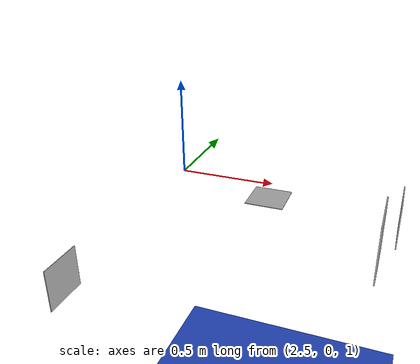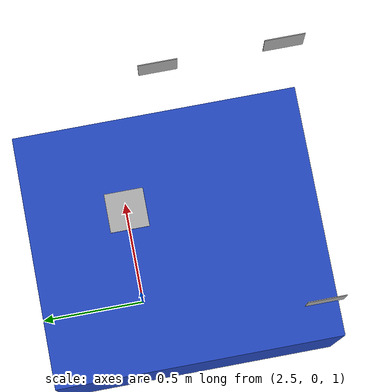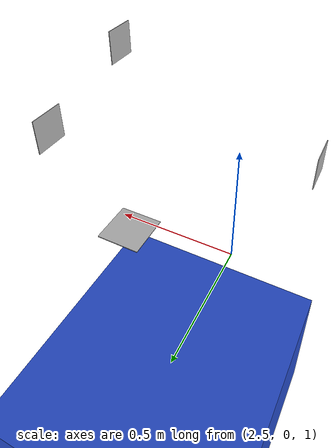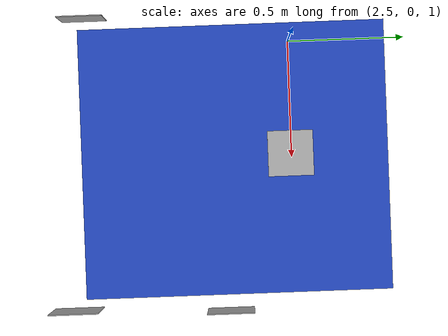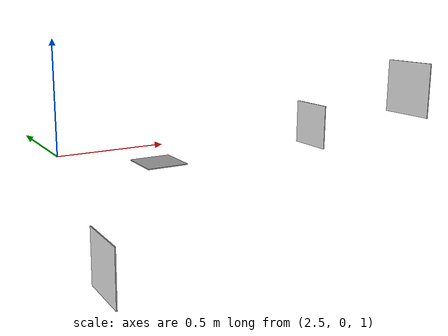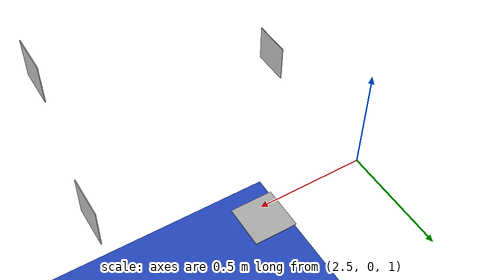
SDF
<sdf version="1.5">
 <world name="default">
  <gravity>0 0 0</gravity>
  <include><uri>model://sun</uri></include>
  <include><uri>model://background</uri><name>water2</name></include>
  <include>
   <uri>model://saruco0</uri>
   <pose>2.352033 -0.903928 0.772462 0 0 0</pose>
   <name>saruco0</name>
  </include>
  <include>
   <uri>model://saruco1</uri>
   <pose>3.590819 -0.903928 1.232259 0 0 0</pose>
   <name>saruco1</name>
  </include>
  <include>
   <uri>model://saruco2</uri>
   <pose>3.643968 -0.283789 0.982318 0 0 0</pose>
   <name>saruco2</name>
  </include>
  <include><uri>model://saruco3</uri><pose>2.882864 0 0.916771 0 1.57 0</pose><name>saruco3</name></include>
  <plugin name="gazebo_ros_state" filename="libgazebo_ros_state.so">
   <ros><namespace>/demo</namespace><argument>model_states:=model_states_demo</argument></ros>
   <update_rate>1.0</update_rate>
  </plugin>
 </world>
</sdf>

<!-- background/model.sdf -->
<sdf version="1.5">
    <model name="underwater_background">
      <pose>0 0 -1 0 0 0</pose>
      <link name="background_link">
        <visual name="background_visual">
          <geometry>
            <box>
              <size>100 100 1</size>
            </box>
          </geometry>
          <material>
            <script>
              <name>Gazebo/Blue</name>
              <ambient>0 0 0.2 1</ambient>
              <diffuse>0 0 0.2 1</diffuse>
              <specular>0 0 0.2 1</specular>
              <emissive>0 0 0.2 1</emissive>
              <transparency>0</transparency>
            </script>
          </material>
        </visual>
      </link>
    </model>
</sdf>

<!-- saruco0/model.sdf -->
<sdf version="1.6">
  <model name="AruCo0">
    <static>true</static>
    <link name="link">
      <visual name="visual">
        <geometry>
          <mesh>
            <uri>model://aruco0/meshes/AruCo0.dae</uri>
          <scale>0.4 0.4 0.4</scale></mesh>
        </geometry>
      </visual>
    </link>
  </model>
</sdf>

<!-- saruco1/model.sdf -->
<sdf version="1.6">
  <model name="AruCo1">
    <static>true</static>
    <link name="link">
      <visual name="visual">
        <geometry>
          <mesh>
            <uri>model://aruco1/meshes/AruCo1.dae</uri>
          <scale>0.4 0.4 0.4</scale></mesh>
        </geometry>
      </visual>
    </link>
  </model>
</sdf>

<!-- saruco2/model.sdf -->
<sdf version="1.6">
  <model name="AruCo2">
    <static>true</static>
    <link name="link">
      <visual name="visual">
        <geometry>
          <mesh>
            <uri>model://aruco2/meshes/AruCo2.dae</uri>
          <scale>0.4 0.4 0.4</scale></mesh>
        </geometry>
      </visual>
    </link>
  </model>
</sdf>

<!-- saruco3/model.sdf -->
<sdf version="1.6">
  <model name="AruCo3">
    <static>true</static>
    <link name="link">
      <visual name="visual">
        <geometry>
          <mesh>
            <uri>model://aruco3/meshes/AruCo3.dae</uri>
          <scale>0.4 0.4 0.4</scale></mesh>
        </geometry>
      </visual>
    </link>
  </model>
</sdf>
